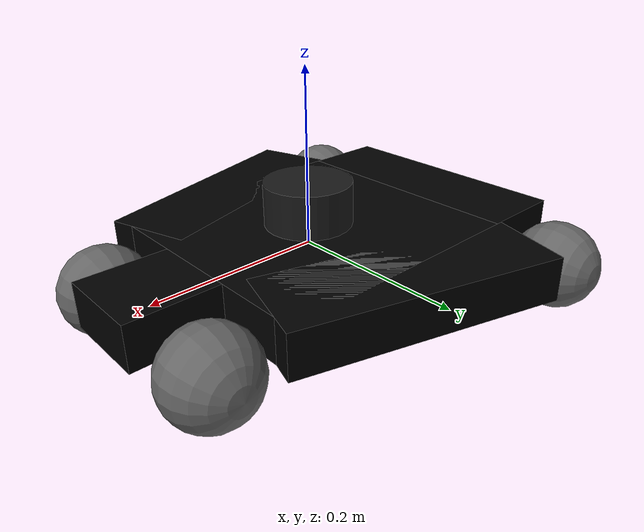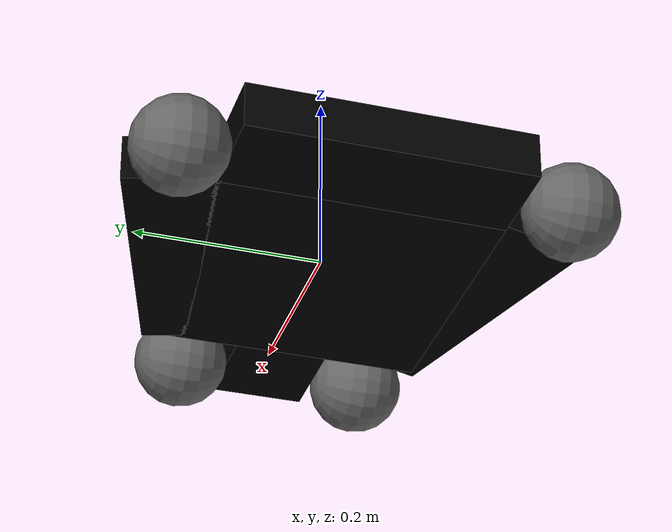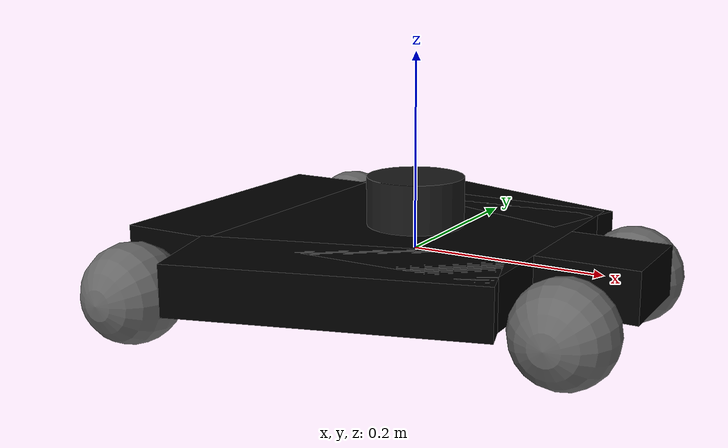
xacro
<?xml version="1.0"?>
<robot xmlns:xacro="http://www.ros.org/wiki/xacro" name="my_simple_mobile_base">

    <xacro:include filename="$(find my_simple_mobile_base)/ros/description/laser.xacro" />

    <xacro:property name="base_mass" value="30.0" />
    <xacro:property name="wheel_mass" value="5.0" />
    <xacro:property name="wheel_radius" value="0.05" />

    <xacro:macro name="cuboid_inertia" params="mass length breadth height">
        <inertial>
            <mass value="${mass}" />
            <inertia ixx="${(mass/12)*(breadth*breadth + height*height)}"
                     iyy="${(mass/12)*(height*height + length*length)}"
                     iyz="0.0" ixy="0.0" ixz="0.0"
                     izz="${(mass/12)*(breadth*breadth + length*length)}" />
        </inertial>
    </xacro:macro>

    <xacro:macro name="sphere_inertia" params="mass radius">
        <inertial>
            <mass value="${mass}" />
            <inertia ixx="${(mass*0.4)*(radius*radius)}"
                     iyy="${(mass*0.4)*(radius*radius)}"
                     iyz="0.0" ixy="0.0" ixz="0.0"
                     izz="${(mass*0.4)*(radius*radius)}" />
        </inertial>
    </xacro:macro>

    <xacro:macro name="wheel" params="name parent *origin mass radius">
        <joint name="joint_${name}" type="fixed">
            <xacro:insert_block name="origin" />
            <parent link="${parent}"/>
            <child link="${name}_link"/>
        </joint>
        <link name="${name}_link">
            <visual>
                <geometry>
                    <sphere radius="${radius}"/>
                </geometry>
                <origin xyz='0.0 0.0 0.0' rpy='1.57 0.0 0.0' />
                <material name="light_grey"/>
            </visual>
            <collision>
                <geometry>
                    <sphere radius="${radius}"/>
                </geometry>
                <origin xyz='0.0 0.0 0.0' rpy='0.0 0.0 0.0' />
            </collision>
            <xacro:sphere_inertia mass="${mass}" radius="${radius}" />
        </link>
        <gazebo reference="${name}_link">
            <material>Gazebo/Grey</material>
        </gazebo>
    </xacro:macro>

    <material name="black">
        <color rgba="0.0 0.0 0.0 1.0"/>
    </material>
    <material name="light_grey">
        <color rgba="0.4 0.4 0.4 1.0"/>
    </material>

    <link name="base_link">
        <visual>
            <geometry>
                <box size='0.1 0.3 0.05'/>
            </geometry>
            <origin xyz='-0.2 0.0 0.0' rpy='0.0 0.0 0.0' />
            <material name="black"/>
        </visual>
        <visual>
            <geometry>
                <box size='0.3 0.3 0.05'/>
            </geometry>
            <origin xyz='0.0 0.0 0.0' rpy='0.0 0.0 0.0' />
            <material name="black"/>
        </visual>
        <visual>
            <geometry>
                <box size='0.1 0.1 0.05'/>
            </geometry>
            <origin xyz='0.2 0.0 0.0' rpy='0.0 0.0 0.0' />
            <material name="black"/>
        </visual>
        <visual>
            <geometry>
                <box size='0.3 0.1 0.05'/>
            </geometry>
            <origin xyz='0.0 0.15 0.0' rpy='0.0 0.0 -0.3' />
            <material name="black"/>
        </visual>
        <visual>
            <geometry>
                <box size='0.3 0.1 0.05'/>
            </geometry>
            <origin xyz='0.0 -0.15 0.0' rpy='0.0 0.0 0.3' />
            <material name="black"/>
        </visual>
        <collision>
            <geometry>
                <box size='0.5 0.3 0.05'/>
            </geometry>
            <origin xyz='0.0 0.0 0.0' rpy='0.0 0.0 0.0' />
        </collision>
        <xacro:cuboid_inertia mass="${base_mass}" length="0.5" breadth="0.3" height="0.05"/>
    </link>

    <gazebo reference="base_link">
        <material>Gazebo/Black</material>
    </gazebo>

    <!-- WHEELS -->
    <xacro:wheel name="rear_left_wheel" parent="base_link"
                        mass="${wheel_mass}" radius="${wheel_radius}" >
        <origin xyz="-0.2 0.2 -0.025" rpy="0 0 0.0" />
    </xacro:wheel>

    <xacro:wheel name="rear_right_wheel" parent="base_link"
                        mass="${wheel_mass}" radius="${wheel_radius}" >
        <origin xyz="-0.2 -0.2 -0.025" rpy="0 0 0.0" />
    </xacro:wheel>

    <xacro:wheel name="front_left_wheel" parent="base_link"
                        mass="${wheel_mass}" radius="${wheel_radius}" >
        <origin xyz="0.2 0.1 -0.025" rpy="0 0 0.0" />
    </xacro:wheel>

    <xacro:wheel name="front_right_wheel" parent="base_link"
                        mass="${wheel_mass}" radius="${wheel_radius}" >
        <origin xyz="0.2 -0.1 -0.025" rpy="0 0 0.0" />
    </xacro:wheel>

    <xacro:laser name="laser" parent="base_link" ros_topic="scan"
                  update_rate="20" min_angle="-3.14" max_angle="3.14">
        <origin xyz='0.0 0.0 0.05' rpy='0 0 0'/>
    </xacro:laser>

    <gazebo>
        <plugin name="object_controller" filename="libgazebo_ros_planar_move.so">
            <commandTopic>cmd_vel</commandTopic>
            <odometryTopic>odom</odometryTopic>
            <odometryFrame>odom</odometryFrame>
            <odometryRate>20.0</odometryRate>
            <robotBaseFrame>base_link</robotBaseFrame>
        </plugin>
    </gazebo>

    <gazebo>
        <plugin name="gazebo_ros_control" filename="libgazebo_ros_control.so">
            <robotNamespace>/</robotNamespace>
            <robotSimType>gazebo_ros_control/DefaultRobotHWSim</robotSimType>
            <legacyModeNS>true</legacyModeNS>
        </plugin>
    </gazebo>
</robot>

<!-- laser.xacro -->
<root xmlns:xacro="http://www.ros.org/wiki/xacro">

    <material name="dark_grey">
        <color rgba="0.1 0.1 0.1 1.0"/>
    </material>

    <xacro:macro name="laser" params="name parent *origin ros_topic update_rate min_angle max_angle">
        <joint name="${name}_joint" type="fixed">
            <xacro:insert_block name="origin" />
            <parent link="${parent}"/>
            <child link="${name}_link"/>
        </joint>
        <link name="${name}_link">
            <visual>
                <origin xyz="0 0 0" rpy="0 0 0"/>
                <geometry>
                    <cylinder length="0.05" radius="0.05"/>
                </geometry>
                <material name="dark_grey"/>
            </visual>
            <collision>
                <origin xyz="0 0 0" rpy="0 0 0"/>
                <geometry>
                    <box size="0.1 0.1 0.1"/>
                </geometry>
            </collision>
            <inertial>
                <mass value="1e-5" />
                <origin xyz="0 0 0" rpy="0 0 0"/>
                <inertia ixx="1e-6" ixy="0" ixz="0" iyy="1e-6" iyz="0" izz="1e-6" />
            </inertial>
        </link>

        <gazebo reference="${name}_link">
            <sensor type="ray" name="${name}">
                <pose>0 0 0 0 0 0</pose>
                <visualize>true</visualize>
                <update_rate>${update_rate}</update_rate>
                <ray>
                    <scan>
                        <horizontal>
                            <samples>360</samples>
                            <resolution>1</resolution>
                            <min_angle>${min_angle}</min_angle>
                            <max_angle>${max_angle}</max_angle>
                        </horizontal>
                    </scan>
                    <range>
                        <min>0.1</min>
                        <max>5.0</max>
                        <resolution>0.1</resolution>
                    </range>
                    <noise>
                        <type>gaussian</type>
                        <!-- A mean of 0.0m and stddev of 0.01m will put 99.7%
                             of samples within 0.03m of the true reading. -->
                        <mean>0.0</mean>
                        <stddev>0.01</stddev>
                    </noise>
                </ray>
                <plugin name="laser_plugin" filename="libgazebo_ros_laser.so">
                    <robotNamespace>/</robotNamespace>
                    <topicName>${ros_topic}</topicName>
                    <frameName>${name}_link</frameName>
                </plugin>
            </sensor>
        </gazebo>
    </xacro:macro>
</root>
